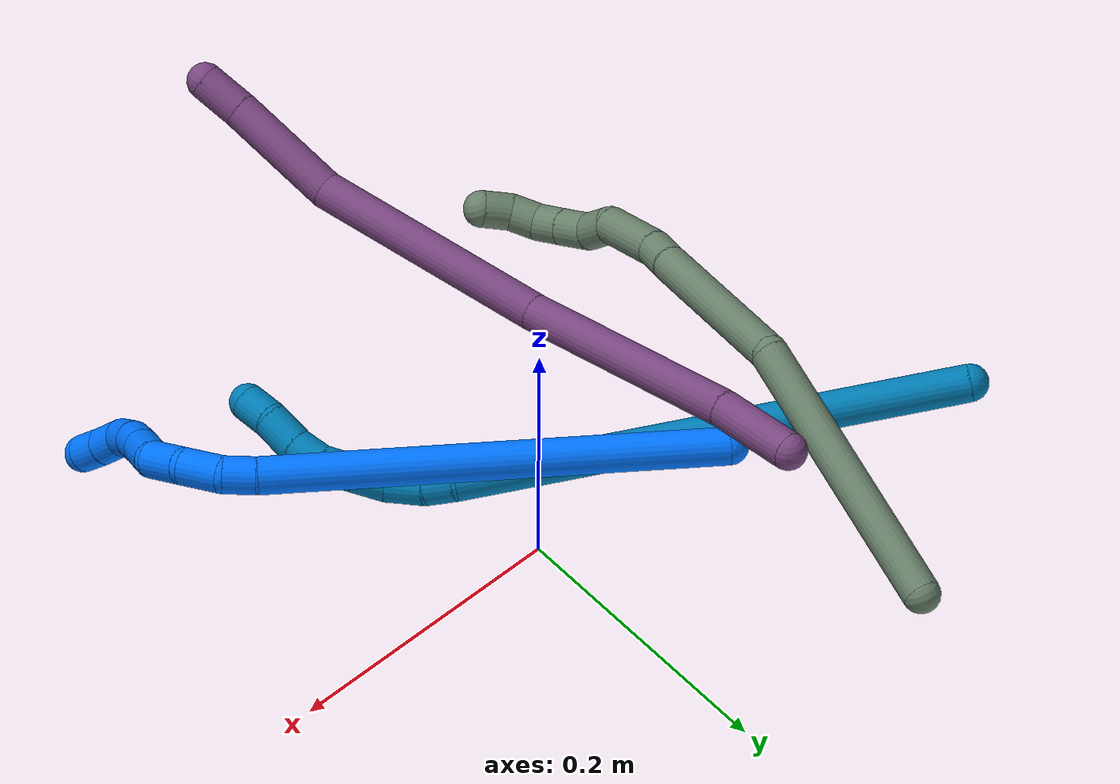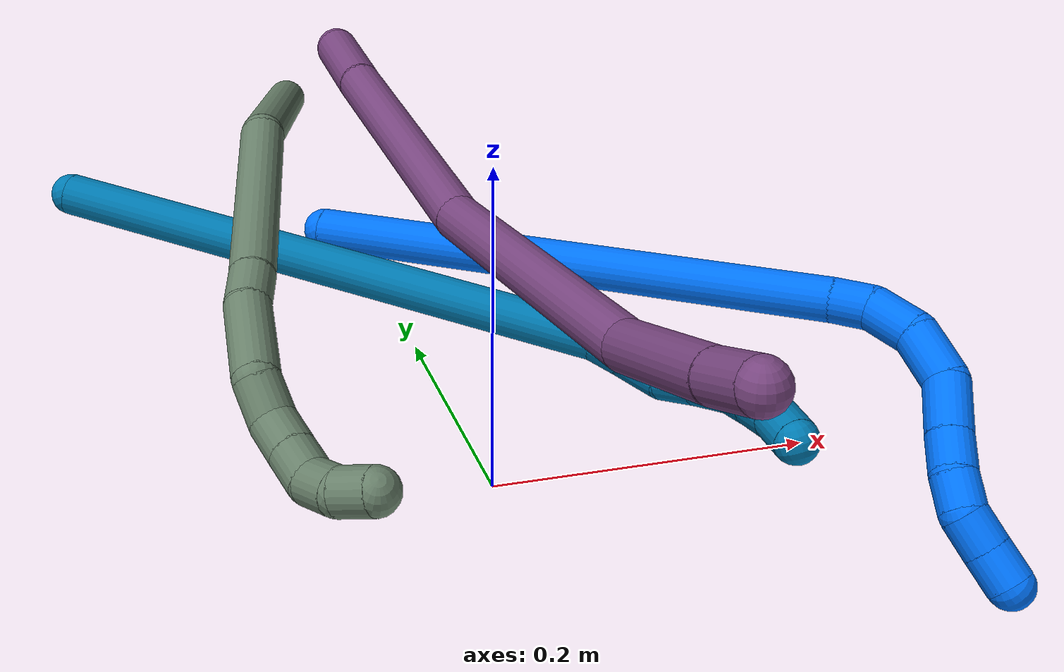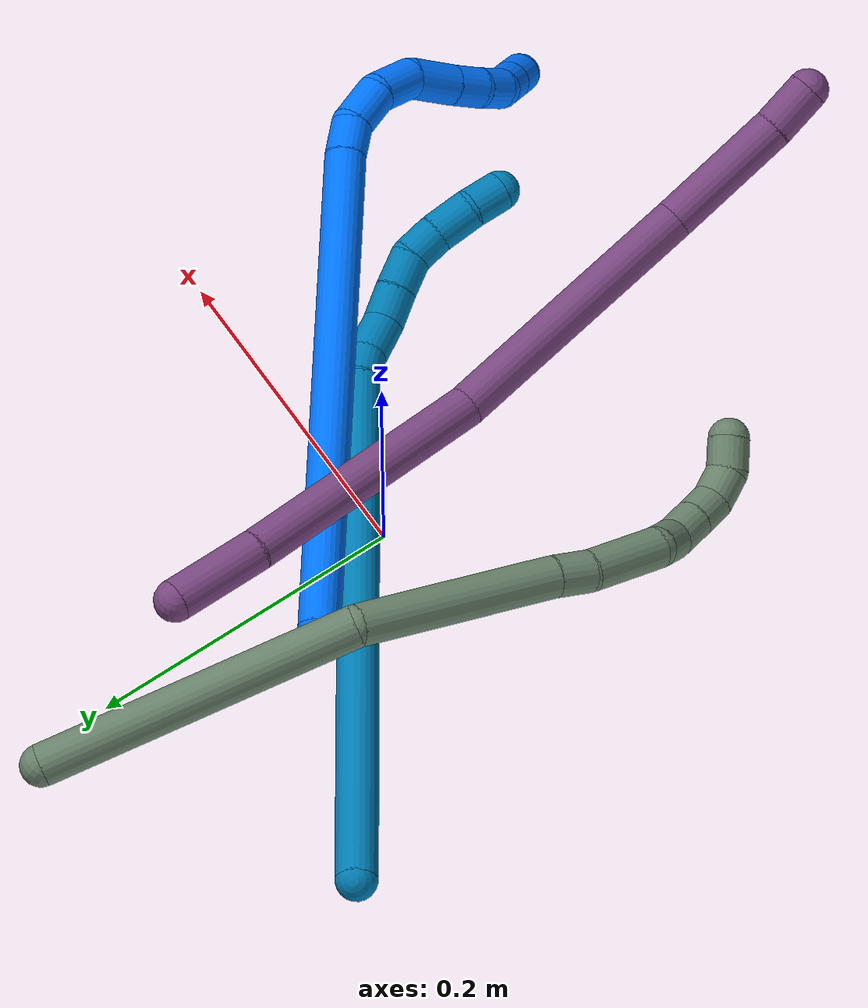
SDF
<sdf version="1.7">
 <world name="default">
  <model name="9">
   <static>0</static>
   <link name="9">
    <collision name="collision-cylinder-e_1_1_4">
     <pose>0.12103 -0.082893 0.085646 0.769063 0.793053 0.335692</pose>
     <geometry><cylinder><radius>0.0125</radius><length>0.339733</length></cylinder></geometry>
     <surface>
      <friction><ode><mu>1.16</mu><mu2>1.16</mu2><slip1>0</slip1><slip2>0</slip2></ode></friction>
      <contact><ode><kp>1e+06</kp><kd>1</kd><max_vel>0</max_vel><min_depth>0.001</min_depth></ode></contact>
     </surface>
    </collision>
    <visual name="visual-cylinder-e_1_1_4">
     <pose>0.12103 -0.082893 0.085646 0.769063 0.793053 0.335692</pose>
     <geometry><cylinder><radius>0.0125</radius><length>0.339733</length></cylinder></geometry>
     <material><ambient>0 0.490196 0.709804 1</ambient></material>
    </visual>
    <collision name="collision-cylinder-e_2_4_5">
     <pose>0.249024 -0.168731 0.177921 0.418127 0.765064 0.170316</pose>
     <geometry><cylinder><radius>0.0125</radius><length>0.020111</length></cylinder></geometry>
     <surface>
      <friction><ode><mu>1.16</mu><mu2>1.16</mu2><slip1>0</slip1><slip2>0</slip2></ode></friction>
      <contact><ode><kp>1e+06</kp><kd>1</kd><max_vel>0</max_vel><min_depth>0.001</min_depth></ode></contact>
     </surface>
    </collision>
    <visual name="visual-cylinder-e_2_4_5">
     <pose>0.249024 -0.168731 0.177921 0.418127 0.765064 0.170316</pose>
     <geometry><cylinder><radius>0.0125</radius><length>0.020111</length></cylinder></geometry>
     <material><ambient>0 0.490196 0.709804 1</ambient></material>
    </visual>
    <collision name="collision-cylinder-e_3_5_6">
     <pose>0.266653 -0.173179 0.192324 0.190938 0.932085 0.09626</pose>
     <geometry><cylinder><radius>0.0125</radius><length>0.026566</length></cylinder></geometry>
     <surface>
      <friction><ode><mu>1.16</mu><mu2>1.16</mu2><slip1>0</slip1><slip2>0</slip2></ode></friction>
      <contact><ode><kp>1e+06</kp><kd>1</kd><max_vel>0</max_vel><min_depth>0.001</min_depth></ode></contact>
     </surface>
    </collision>
    <visual name="visual-cylinder-e_3_5_6">
     <pose>0.266653 -0.173179 0.192324 0.190938 0.932085 0.09626</pose>
     <geometry><cylinder><radius>0.0125</radius><length>0.026566</length></cylinder></geometry>
     <material><ambient>0 0.490196 0.709804 1</ambient></material>
    </visual>
    <collision name="collision-cylinder-e_4_6_7">
     <pose>0.28789 -0.176521 0.203026 0.561202 1.25479 0.412043</pose>
     <geometry><cylinder><radius>0.0125</radius><length>0.022247</length></cylinder></geometry>
     <surface>
      <friction><ode><mu>1.16</mu><mu2>1.16</mu2><slip1>0</slip1><slip2>0</slip2></ode></friction>
      <contact><ode><kp>1e+06</kp><kd>1</kd><max_vel>0</max_vel><min_depth>0.001</min_depth></ode></contact>
     </surface>
    </collision>
    <visual name="visual-cylinder-e_4_6_7">
     <pose>0.28789 -0.176521 0.203026 0.561202 1.25479 0.412043</pose>
     <geometry><cylinder><radius>0.0125</radius><length>0.022247</length></cylinder></geometry>
     <material><ambient>0 0.490196 0.709804 1</ambient></material>
    </visual>
    <collision name="collision-cylinder-e_5_7_8">
     <pose>0.309236 -0.179721 0.209398 0.37584 1.2396 0.269757</pose>
     <geometry><cylinder><radius>0.0125</radius><length>0.022784</length></cylinder></geometry>
     <surface>
      <friction><ode><mu>1.16</mu><mu2>1.16</mu2><slip1>0</slip1><slip2>0</slip2></ode></friction>
      <contact><ode><kp>1e+06</kp><kd>1</kd><max_vel>0</max_vel><min_depth>0.001</min_depth></ode></contact>
     </surface>
    </collision>
    <visual name="visual-cylinder-e_5_7_8">
     <pose>0.309236 -0.179721 0.209398 0.37584 1.2396 0.269757</pose>
     <geometry><cylinder><radius>0.0125</radius><length>0.022784</length></cylinder></geometry>
     <material><ambient>0 0.490196 0.709804 1</ambient></material>
    </visual>
    <collision name="collision-cylinder-e_6_8_9">
     <pose>0.329583 -0.178299 0.216115 -0.704758 1.1492 -0.467486</pose>
     <geometry><cylinder><radius>0.0125</radius><length>0.020987</length></cylinder></geometry>
     <surface>
      <friction><ode><mu>1.16</mu><mu2>1.16</mu2><slip1>0</slip1><slip2>0</slip2></ode></friction>
      <contact><ode><kp>1e+06</kp><kd>1</kd><max_vel>0</max_vel><min_depth>0.001</min_depth></ode></contact>
     </surface>
    </collision>
    <visual name="visual-cylinder-e_6_8_9">
     <pose>0.329583 -0.178299 0.216115 -0.704758 1.1492 -0.467486</pose>
     <geometry><cylinder><radius>0.0125</radius><length>0.020987</length></cylinder></geometry>
     <material><ambient>0 0.490196 0.709804 1</ambient></material>
    </visual>
    <collision name="collision-cylinder-e_7_9_10">
     <pose>0.350628 -0.170222 0.222031 -1.10759 1.09443 -0.720594</pose>
     <geometry><cylinder><radius>0.0125</radius><length>0.025813</length></cylinder></geometry>
     <surface>
      <friction><ode><mu>1.16</mu><mu2>1.16</mu2><slip1>0</slip1><slip2>0</slip2></ode></friction>
      <contact><ode><kp>1e+06</kp><kd>1</kd><max_vel>0</max_vel><min_depth>0.001</min_depth></ode></contact>
     </surface>
    </collision>
    <visual name="visual-cylinder-e_7_9_10">
     <pose>0.350628 -0.170222 0.222031 -1.10759 1.09443 -0.720594</pose>
     <geometry><cylinder><radius>0.0125</radius><length>0.025813</length></cylinder></geometry>
     <material><ambient>0 0.490196 0.709804 1</ambient></material>
    </visual>
    <collision name="collision-cylinder-e_8_10_2">
     <pose>0.370856 -0.160469 0.22934 -0.762754 0.935799 -0.399868</pose>
     <geometry><cylinder><radius>0.0125</radius><length>0.021758</length></cylinder></geometry>
     <surface>
      <friction><ode><mu>1.16</mu><mu2>1.16</mu2><slip1>0</slip1><slip2>0</slip2></ode></friction>
      <contact><ode><kp>1e+06</kp><kd>1</kd><max_vel>0</max_vel><min_depth>0.001</min_depth></ode></contact>
     </surface>
    </collision>
    <visual name="visual-cylinder-e_8_10_2">
     <pose>0.370856 -0.160469 0.22934 -0.762754 0.935799 -0.399868</pose>
     <geometry><cylinder><radius>0.0125</radius><length>0.021758</length></cylinder></geometry>
     <material><ambient>0 0.490196 0.709804 1</ambient></material>
    </visual>
    <collision name="collision-sphere-2">
     <pose>0.379614 -0.15601 0.234006 0 -0 0</pose>
     <geometry><sphere><radius>0.0125</radius></sphere></geometry>
     <surface>
      <friction><ode><mu>1.16</mu><mu2>1.16</mu2><slip1>0</slip1><slip2>0</slip2></ode></friction>
      <contact><ode><kp>1e+06</kp><kd>1</kd><max_vel>0</max_vel><min_depth>0.001</min_depth></ode></contact>
     </surface>
    </collision>
    <visual name="visual-sphere-2">
     <pose>0.379614 -0.15601 0.234006 0 -0 0</pose>
     <geometry><sphere><radius>0.0125</radius></sphere></geometry>
     <material><ambient>0 0.490196 0.709804 1</ambient></material>
    </visual>
    <collision name="collision-sphere-10">
     <pose>0.362097 -0.164927 0.224675 0 -0 0</pose>
     <geometry><sphere><radius>0.0125</radius></sphere></geometry>
     <surface>
      <friction><ode><mu>1.16</mu><mu2>1.16</mu2><slip1>0</slip1><slip2>0</slip2></ode></friction>
      <contact><ode><kp>1e+06</kp><kd>1</kd><max_vel>0</max_vel><min_depth>0.001</min_depth></ode></contact>
     </surface>
    </collision>
    <visual name="visual-sphere-10">
     <pose>0.362097 -0.164927 0.224675 0 -0 0</pose>
     <geometry><sphere><radius>0.0125</radius></sphere></geometry>
     <material><ambient>0 0.490196 0.709804 1</ambient></material>
    </visual>
    <collision name="collision-sphere-9">
     <pose>0.339158 -0.175517 0.219386 0 -0 0</pose>
     <geometry><sphere><radius>0.0125</radius></sphere></geometry>
     <surface>
      <friction><ode><mu>1.16</mu><mu2>1.16</mu2><slip1>0</slip1><slip2>0</slip2></ode></friction>
      <contact><ode><kp>1e+06</kp><kd>1</kd><max_vel>0</max_vel><min_depth>0.001</min_depth></ode></contact>
     </surface>
    </collision>
    <visual name="visual-sphere-9">
     <pose>0.339158 -0.175517 0.219386 0 -0 0</pose>
     <geometry><sphere><radius>0.0125</radius></sphere></geometry>
     <material><ambient>0 0.490196 0.709804 1</ambient></material>
    </visual>
    <collision name="collision-sphere-4">
     <pose>0.24206 -0.165785 0.171292 0 -0 0</pose>
     <geometry><sphere><radius>0.0125</radius></sphere></geometry>
     <surface>
      <friction><ode><mu>1.16</mu><mu2>1.16</mu2><slip1>0</slip1><slip2>0</slip2></ode></friction>
      <contact><ode><kp>1e+06</kp><kd>1</kd><max_vel>0</max_vel><min_depth>0.001</min_depth></ode></contact>
     </surface>
    </collision>
    <visual name="visual-sphere-4">
     <pose>0.24206 -0.165785 0.171292 0 -0 0</pose>
     <geometry><sphere><radius>0.0125</radius></sphere></geometry>
     <material><ambient>0 0.490196 0.709804 1</ambient></material>
    </visual>
    <collision name="collision-sphere-1">
     <geometry><sphere><radius>0.0125</radius></sphere></geometry>
     <surface>
      <friction><ode><mu>1.16</mu><mu2>1.16</mu2><slip1>0</slip1><slip2>0</slip2></ode></friction>
      <contact><ode><kp>1e+06</kp><kd>1</kd><max_vel>0</max_vel><min_depth>0.001</min_depth></ode></contact>
     </surface>
    </collision>
    <visual name="visual-sphere-1">
     <geometry><sphere><radius>0.0125</radius></sphere></geometry>
     <material><ambient>0 0.490196 0.709804 1</ambient></material>
    </visual>
    <collision name="collision-sphere-8">
     <pose>0.320009 -0.181081 0.212844 0 -0 0</pose>
     <geometry><sphere><radius>0.0125</radius></sphere></geometry>
     <surface>
      <friction><ode><mu>1.16</mu><mu2>1.16</mu2><slip1>0</slip1><slip2>0</slip2></ode></friction>
      <contact><ode><kp>1e+06</kp><kd>1</kd><max_vel>0</max_vel><min_depth>0.001</min_depth></ode></contact>
     </surface>
    </collision>
    <visual name="visual-sphere-8">
     <pose>0.320009 -0.181081 0.212844 0 -0 0</pose>
     <geometry><sphere><radius>0.0125</radius></sphere></geometry>
     <material><ambient>0 0.490196 0.709804 1</ambient></material>
    </visual>
    <collision name="collision-sphere-5">
     <pose>0.255988 -0.171676 0.184549 0 -0 0</pose>
     <geometry><sphere><radius>0.0125</radius></sphere></geometry>
     <surface>
      <friction><ode><mu>1.16</mu><mu2>1.16</mu2><slip1>0</slip1><slip2>0</slip2></ode></friction>
      <contact><ode><kp>1e+06</kp><kd>1</kd><max_vel>0</max_vel><min_depth>0.001</min_depth></ode></contact>
     </surface>
    </collision>
    <visual name="visual-sphere-5">
     <pose>0.255988 -0.171676 0.184549 0 -0 0</pose>
     <geometry><sphere><radius>0.0125</radius></sphere></geometry>
     <material><ambient>0 0.490196 0.709804 1</ambient></material>
    </visual>
    <collision name="collision-sphere-6">
     <pose>0.277317 -0.174682 0.200099 0 -0 0</pose>
     <geometry><sphere><radius>0.0125</radius></sphere></geometry>
     <surface>
      <friction><ode><mu>1.16</mu><mu2>1.16</mu2><slip1>0</slip1><slip2>0</slip2></ode></friction>
      <contact><ode><kp>1e+06</kp><kd>1</kd><max_vel>0</max_vel><min_depth>0.001</min_depth></ode></contact>
     </surface>
    </collision>
    <visual name="visual-sphere-6">
     <pose>0.277317 -0.174682 0.200099 0 -0 0</pose>
     <geometry><sphere><radius>0.0125</radius></sphere></geometry>
     <material><ambient>0 0.490196 0.709804 1</ambient></material>
    </visual>
    <collision name="collision-sphere-7">
     <pose>0.298463 -0.178361 0.205952 0 -0 0</pose>
     <geometry><sphere><radius>0.0125</radius></sphere></geometry>
     <surface>
      <friction><ode><mu>1.16</mu><mu2>1.16</mu2><slip1>0</slip1><slip2>0</slip2></ode></friction>
      <contact><ode><kp>1e+06</kp><kd>1</kd><max_vel>0</max_vel><min_depth>0.001</min_depth></ode></contact>
     </surface>
    </collision>
    <visual name="visual-sphere-7">
     <pose>0.298463 -0.178361 0.205952 0 -0 0</pose>
     <geometry><sphere><radius>0.0125</radius></sphere></geometry>
     <material><ambient>0 0.490196 0.709804 1</ambient></material>
    </visual>
    <inertial>
     <pose>0.181394 -0.111609 0.124658 0 -0 0</pose>
     <mass>0.5</mass>
     <inertia>
      <ixx>0.002967</ixx>
      <ixy>0</ixy>
      <ixz>0</ixz>
      <iyy>0.00352</iyy>
      <iyz>0</iyz>
      <izz>-0.000731</izz>
     </inertia>
    </inertial>
   </link>
   <pose>-0.223017 0.168894 0.147479 -3.10312 -0.430996 -1.13542</pose>
  </model>
  <model name="14">
   <static>0</static>
   <link name="14">
    <collision name="collision-cylinder-e_1_1_4">
     <pose>0.043382 -0.120863 0.082604 0.971262 0.288091 0.152814</pose>
     <geometry><cylinder><radius>0.0125</radius><length>0.305375</length></cylinder></geometry>
     <surface>
      <friction><ode><mu>1.16</mu><mu2>1.16</mu2><slip1>0</slip1><slip2>0</slip2></ode></friction>
      <contact><ode><kp>1e+06</kp><kd>1</kd><max_vel>0</max_vel><min_depth>0.001</min_depth></ode></contact>
     </surface>
    </collision>
    <visual name="visual-cylinder-e_1_1_4">
     <pose>0.043382 -0.120863 0.082604 0.971262 0.288091 0.152814</pose>
     <geometry><cylinder><radius>0.0125</radius><length>0.305375</length></cylinder></geometry>
     <material><ambient>0 0.462745 1 1</ambient></material>
    </visual>
    <collision name="collision-cylinder-e_2_4_5">
     <pose>0.091213 -0.250198 0.170714 0.994519 0.414831 0.227449</pose>
     <geometry><cylinder><radius>0.0125</radius><length>0.022079</length></cylinder></geometry>
     <surface>
      <friction><ode><mu>1.16</mu><mu2>1.16</mu2><slip1>0</slip1><slip2>0</slip2></ode></friction>
      <contact><ode><kp>1e+06</kp><kd>1</kd><max_vel>0</max_vel><min_depth>0.001</min_depth></ode></contact>
     </surface>
    </collision>
    <visual name="visual-cylinder-e_2_4_5">
     <pose>0.091213 -0.250198 0.170714 0.994519 0.414831 0.227449</pose>
     <geometry><cylinder><radius>0.0125</radius><length>0.022079</length></cylinder></geometry>
     <material><ambient>0 0.462745 1 1</ambient></material>
    </visual>
    <collision name="collision-cylinder-e_3_5_6">
     <pose>0.106008 -0.266082 0.182677 0.854103 0.810909 0.385798</pose>
     <geometry><cylinder><radius>0.0125</radius><length>0.028545</length></cylinder></geometry>
     <surface>
      <friction><ode><mu>1.16</mu><mu2>1.16</mu2><slip1>0</slip1><slip2>0</slip2></ode></friction>
      <contact><ode><kp>1e+06</kp><kd>1</kd><max_vel>0</max_vel><min_depth>0.001</min_depth></ode></contact>
     </surface>
    </collision>
    <visual name="visual-cylinder-e_3_5_6">
     <pose>0.106008 -0.266082 0.182677 0.854103 0.810909 0.385798</pose>
     <geometry><cylinder><radius>0.0125</radius><length>0.028545</length></cylinder></geometry>
     <material><ambient>0 0.462745 1 1</ambient></material>
    </visual>
    <collision name="collision-cylinder-e_4_6_7">
     <pose>0.129744 -0.275675 0.196862 0.274972 1.03068 0.156411</pose>
     <geometry><cylinder><radius>0.0125</radius><length>0.031224</length></cylinder></geometry>
     <surface>
      <friction><ode><mu>1.16</mu><mu2>1.16</mu2><slip1>0</slip1><slip2>0</slip2></ode></friction>
      <contact><ode><kp>1e+06</kp><kd>1</kd><max_vel>0</max_vel><min_depth>0.001</min_depth></ode></contact>
     </surface>
    </collision>
    <visual name="visual-cylinder-e_4_6_7">
     <pose>0.129744 -0.275675 0.196862 0.274972 1.03068 0.156411</pose>
     <geometry><cylinder><radius>0.0125</radius><length>0.031224</length></cylinder></geometry>
     <material><ambient>0 0.462745 1 1</ambient></material>
    </visual>
    <collision name="collision-cylinder-e_5_7_8">
     <pose>0.157581 -0.273588 0.208849 -0.786103 1.17546 -0.539065</pose>
     <geometry><cylinder><radius>0.0125</radius><length>0.03131</length></cylinder></geometry>
     <surface>
      <friction><ode><mu>1.16</mu><mu2>1.16</mu2><slip1>0</slip1><slip2>0</slip2></ode></friction>
      <contact><ode><kp>1e+06</kp><kd>1</kd><max_vel>0</max_vel><min_depth>0.001</min_depth></ode></contact>
     </surface>
    </collision>
    <visual name="visual-cylinder-e_5_7_8">
     <pose>0.157581 -0.273588 0.208849 -0.786103 1.17546 -0.539065</pose>
     <geometry><cylinder><radius>0.0125</radius><length>0.03131</length></cylinder></geometry>
     <material><ambient>0 0.462745 1 1</ambient></material>
    </visual>
    <collision name="collision-cylinder-e_6_8_9">
     <pose>0.181894 -0.266898 0.216205 -0.664261 1.19146 -0.459365</pose>
     <geometry><cylinder><radius>0.0125</radius><length>0.02124</length></cylinder></geometry>
     <surface>
      <friction><ode><mu>1.16</mu><mu2>1.16</mu2><slip1>0</slip1><slip2>0</slip2></ode></friction>
      <contact><ode><kp>1e+06</kp><kd>1</kd><max_vel>0</max_vel><min_depth>0.001</min_depth></ode></contact>
     </surface>
    </collision>
    <visual name="visual-cylinder-e_6_8_9">
     <pose>0.181894 -0.266898 0.216205 -0.664261 1.19146 -0.459365</pose>
     <geometry><cylinder><radius>0.0125</radius><length>0.02124</length></cylinder></geometry>
     <material><ambient>0 0.462745 1 1</ambient></material>
    </visual>
    <collision name="collision-cylinder-e_7_9_10">
     <pose>0.200321 -0.262743 0.224174 -0.34125 1.02759 -0.193866</pose>
     <geometry><cylinder><radius>0.0125</radius><length>0.020005</length></cylinder></geometry>
     <surface>
      <friction><ode><mu>1.16</mu><mu2>1.16</mu2><slip1>0</slip1><slip2>0</slip2></ode></friction>
      <contact><ode><kp>1e+06</kp><kd>1</kd><max_vel>0</max_vel><min_depth>0.001</min_depth></ode></contact>
     </surface>
    </collision>
    <visual name="visual-cylinder-e_7_9_10">
     <pose>0.200321 -0.262743 0.224174 -0.34125 1.02759 -0.193866</pose>
     <geometry><cylinder><radius>0.0125</radius><length>0.020005</length></cylinder></geometry>
     <material><ambient>0 0.462745 1 1</ambient></material>
    </visual>
    <collision name="collision-cylinder-e_8_10_11">
     <pose>0.214752 -0.261483 0.237192 0.05763 0.623418 0.018574</pose>
     <geometry><cylinder><radius>0.0125</radius><length>0.020101</length></cylinder></geometry>
     <surface>
      <friction><ode><mu>1.16</mu><mu2>1.16</mu2><slip1>0</slip1><slip2>0</slip2></ode></friction>
      <contact><ode><kp>1e+06</kp><kd>1</kd><max_vel>0</max_vel><min_depth>0.001</min_depth></ode></contact>
     </surface>
    </collision>
    <visual name="visual-cylinder-e_8_10_11">
     <pose>0.214752 -0.261483 0.237192 0.05763 0.623418 0.018574</pose>
     <geometry><cylinder><radius>0.0125</radius><length>0.020101</length></cylinder></geometry>
     <material><ambient>0 0.462745 1 1</ambient></material>
    </visual>
    <collision name="collision-cylinder-e_9_11_2">
     <pose>0.226837 -0.262741 0.253209 0.099826 0.666242 0.034567</pose>
     <geometry><cylinder><radius>0.0125</radius><length>0.020122</length></cylinder></geometry>
     <surface>
      <friction><ode><mu>1.16</mu><mu2>1.16</mu2><slip1>0</slip1><slip2>0</slip2></ode></friction>
      <contact><ode><kp>1e+06</kp><kd>1</kd><max_vel>0</max_vel><min_depth>0.001</min_depth></ode></contact>
     </surface>
    </collision>
    <visual name="visual-cylinder-e_9_11_2">
     <pose>0.226837 -0.262741 0.253209 0.099826 0.666242 0.034567</pose>
     <geometry><cylinder><radius>0.0125</radius><length>0.020122</length></cylinder></geometry>
     <material><ambient>0 0.462745 1 1</ambient></material>
    </visual>
    <collision name="collision-sphere-2">
     <pose>0.233056 -0.263529 0.261079 0 -0 0</pose>
     <geometry><sphere><radius>0.0125</radius></sphere></geometry>
     <surface>
      <friction><ode><mu>1.16</mu><mu2>1.16</mu2><slip1>0</slip1><slip2>0</slip2></ode></friction>
      <contact><ode><kp>1e+06</kp><kd>1</kd><max_vel>0</max_vel><min_depth>0.001</min_depth></ode></contact>
     </surface>
    </collision>
    <visual name="visual-sphere-2">
     <pose>0.233056 -0.263529 0.261079 0 -0 0</pose>
     <geometry><sphere><radius>0.0125</radius></sphere></geometry>
     <material><ambient>0 0.462745 1 1</ambient></material>
    </visual>
    <collision name="collision-sphere-11">
     <pose>0.220619 -0.261953 0.245339 0 -0 0</pose>
     <geometry><sphere><radius>0.0125</radius></sphere></geometry>
     <surface>
      <friction><ode><mu>1.16</mu><mu2>1.16</mu2><slip1>0</slip1><slip2>0</slip2></ode></friction>
      <contact><ode><kp>1e+06</kp><kd>1</kd><max_vel>0</max_vel><min_depth>0.001</min_depth></ode></contact>
     </surface>
    </collision>
    <visual name="visual-sphere-11">
     <pose>0.220619 -0.261953 0.245339 0 -0 0</pose>
     <geometry><sphere><radius>0.0125</radius></sphere></geometry>
     <material><ambient>0 0.462745 1 1</ambient></material>
    </visual>
    <collision name="collision-sphere-10">
     <pose>0.208884 -0.261013 0.229046 0 -0 0</pose>
     <geometry><sphere><radius>0.0125</radius></sphere></geometry>
     <surface>
      <friction><ode><mu>1.16</mu><mu2>1.16</mu2><slip1>0</slip1><slip2>0</slip2></ode></friction>
      <contact><ode><kp>1e+06</kp><kd>1</kd><max_vel>0</max_vel><min_depth>0.001</min_depth></ode></contact>
     </surface>
    </collision>
    <visual name="visual-sphere-10">
     <pose>0.208884 -0.261013 0.229046 0 -0 0</pose>
     <geometry><sphere><radius>0.0125</radius></sphere></geometry>
     <material><ambient>0 0.462745 1 1</ambient></material>
    </visual>
    <collision name="collision-sphere-9">
     <pose>0.191759 -0.264473 0.219302 0 -0 0</pose>
     <geometry><sphere><radius>0.0125</radius></sphere></geometry>
     <surface>
      <friction><ode><mu>1.16</mu><mu2>1.16</mu2><slip1>0</slip1><slip2>0</slip2></ode></friction>
      <contact><ode><kp>1e+06</kp><kd>1</kd><max_vel>0</max_vel><min_depth>0.001</min_depth></ode></contact>
     </surface>
    </collision>
    <visual name="visual-sphere-9">
     <pose>0.191759 -0.264473 0.219302 0 -0 0</pose>
     <geometry><sphere><radius>0.0125</radius></sphere></geometry>
     <material><ambient>0 0.462745 1 1</ambient></material>
    </visual>
    <collision name="collision-sphere-4">
     <pose>0.086764 -0.241727 0.165209 0 -0 0</pose>
     <geometry><sphere><radius>0.0125</radius></sphere></geometry>
     <surface>
      <friction><ode><mu>1.16</mu><mu2>1.16</mu2><slip1>0</slip1><slip2>0</slip2></ode></friction>
      <contact><ode><kp>1e+06</kp><kd>1</kd><max_vel>0</max_vel><min_depth>0.001</min_depth></ode></contact>
     </surface>
    </collision>
    <visual name="visual-sphere-4">
     <pose>0.086764 -0.241727 0.165209 0 -0 0</pose>
     <geometry><sphere><radius>0.0125</radius></sphere></geometry>
     <material><ambient>0 0.462745 1 1</ambient></material>
    </visual>
    <collision name="collision-sphere-1">
     <geometry><sphere><radius>0.0125</radius></sphere></geometry>
     <surface>
      <friction><ode><mu>1.16</mu><mu2>1.16</mu2><slip1>0</slip1><slip2>0</slip2></ode></friction>
      <contact><ode><kp>1e+06</kp><kd>1</kd><max_vel>0</max_vel><min_depth>0.001</min_depth></ode></contact>
     </surface>
    </collision>
    <visual name="visual-sphere-1">
     <geometry><sphere><radius>0.0125</radius></sphere></geometry>
     <material><ambient>0 0.462745 1 1</ambient></material>
    </visual>
    <collision name="collision-sphere-8">
     <pose>0.172029 -0.269322 0.213109 0 -0 0</pose>
     <geometry><sphere><radius>0.0125</radius></sphere></geometry>
     <surface>
      <friction><ode><mu>1.16</mu><mu2>1.16</mu2><slip1>0</slip1><slip2>0</slip2></ode></friction>
      <contact><ode><kp>1e+06</kp><kd>1</kd><max_vel>0</max_vel><min_depth>0.001</min_depth></ode></contact>
     </surface>
    </collision>
    <visual name="visual-sphere-8">
     <pose>0.172029 -0.269322 0.213109 0 -0 0</pose>
     <geometry><sphere><radius>0.0125</radius></sphere></geometry>
     <material><ambient>0 0.462745 1 1</ambient></material>
    </visual>
    <collision name="collision-sphere-5">
     <pose>0.095662 -0.258669 0.176219 0 -0 0</pose>
     <geometry><sphere><radius>0.0125</radius></sphere></geometry>
     <surface>
      <friction><ode><mu>1.16</mu><mu2>1.16</mu2><slip1>0</slip1><slip2>0</slip2></ode></friction>
      <contact><ode><kp>1e+06</kp><kd>1</kd><max_vel>0</max_vel><min_depth>0.001</min_depth></ode></contact>
     </surface>
    </collision>
    <visual name="visual-sphere-5">
     <pose>0.095662 -0.258669 0.176219 0 -0 0</pose>
     <geometry><sphere><radius>0.0125</radius></sphere></geometry>
     <material><ambient>0 0.462745 1 1</ambient></material>
    </visual>
    <collision name="collision-sphere-6">
     <pose>0.116355 -0.273495 0.189135 0 -0 0</pose>
     <geometry><sphere><radius>0.0125</radius></sphere></geometry>
     <surface>
      <friction><ode><mu>1.16</mu><mu2>1.16</mu2><slip1>0</slip1><slip2>0</slip2></ode></friction>
      <contact><ode><kp>1e+06</kp><kd>1</kd><max_vel>0</max_vel><min_depth>0.001</min_depth></ode></contact>
     </surface>
    </collision>
    <visual name="visual-sphere-6">
     <pose>0.116355 -0.273495 0.189135 0 -0 0</pose>
     <geometry><sphere><radius>0.0125</radius></sphere></geometry>
     <material><ambient>0 0.462745 1 1</ambient></material>
    </visual>
    <collision name="collision-sphere-7">
     <pose>0.143134 -0.277854 0.204589 0 -0 0</pose>
     <geometry><sphere><radius>0.0125</radius></sphere></geometry>
     <surface>
      <friction><ode><mu>1.16</mu><mu2>1.16</mu2><slip1>0</slip1><slip2>0</slip2></ode></friction>
      <contact><ode><kp>1e+06</kp><kd>1</kd><max_vel>0</max_vel><min_depth>0.001</min_depth></ode></contact>
     </surface>
    </collision>
    <visual name="visual-sphere-7">
     <pose>0.143134 -0.277854 0.204589 0 -0 0</pose>
     <geometry><sphere><radius>0.0125</radius></sphere></geometry>
     <material><ambient>0 0.462745 1 1</ambient></material>
    </visual>
    <inertial>
     <pose>0.088049 -0.177339 0.131669 0 -0 0</pose>
     <mass>0.5</mass>
     <inertia>
      <ixx>0.002637</ixx>
      <ixy>0</ixy>
      <ixz>0</ixz>
      <iyy>0.00176</iyy>
      <iyz>0</iyz>
      <izz>0.001219</izz>
     </inertia>
    </inertial>
   </link>
   <pose>-0.07808 0.097008 0.135917 -2.46734 0.223435 -1.91653</pose>
  </model>
  <model name="17">
   <static>0</static>
   <link name="17">
    <collision name="collision-cylinder-e_1_1_4">
     <pose>-0.038228 -0.057556 0.068566 0.698323 -0.403587 -0.14869</pose>
     <geometry><cylinder><radius>0.0125</radius><length>0.194684</length></cylinder></geometry>
     <surface>
      <friction><ode><mu>1.16</mu><mu2>1.16</mu2><slip1>0</slip1><slip2>0</slip2></ode></friction>
      <contact><ode><kp>1e+06</kp><kd>1</kd><max_vel>0</max_vel><min_depth>0.001</min_depth></ode></contact>
     </surface>
    </collision>
    <visual name="visual-cylinder-e_1_1_4">
     <pose>-0.038228 -0.057556 0.068566 0.698323 -0.403587 -0.14869</pose>
     <geometry><cylinder><radius>0.0125</radius><length>0.194684</length></cylinder></geometry>
     <material><ambient>0.415686 0.509804 0.423529 1</ambient></material>
    </visual>
    <collision name="collision-cylinder-e_2_4_5">
     <pose>-0.10467 -0.168768 0.15672 1.22078 -0.458802 -0.323822</pose>
     <geometry><cylinder><radius>0.0125</radius><length>0.127414</length></cylinder></geometry>
     <surface>
      <friction><ode><mu>1.16</mu><mu2>1.16</mu2><slip1>0</slip1><slip2>0</slip2></ode></friction>
      <contact><ode><kp>1e+06</kp><kd>1</kd><max_vel>0</max_vel><min_depth>0.001</min_depth></ode></contact>
     </surface>
    </collision>
    <visual name="visual-cylinder-e_2_4_5">
     <pose>-0.10467 -0.168768 0.15672 1.22078 -0.458802 -0.323822</pose>
     <geometry><cylinder><radius>0.0125</radius><length>0.127414</length></cylinder></geometry>
     <material><ambient>0.415686 0.509804 0.423529 1</ambient></material>
    </visual>
    <collision name="collision-cylinder-e_3_5_6">
     <pose>-0.138695 -0.23202 0.179252 1.27297 -0.524666 -0.391834</pose>
     <geometry><cylinder><radius>0.0125</radius><length>0.023197</length></cylinder></geometry>
     <surface>
      <friction><ode><mu>1.16</mu><mu2>1.16</mu2><slip1>0</slip1><slip2>0</slip2></ode></friction>
      <contact><ode><kp>1e+06</kp><kd>1</kd><max_vel>0</max_vel><min_depth>0.001</min_depth></ode></contact>
     </surface>
    </collision>
    <visual name="visual-cylinder-e_3_5_6">
     <pose>-0.138695 -0.23202 0.179252 1.27297 -0.524666 -0.391834</pose>
     <geometry><cylinder><radius>0.0125</radius><length>0.023197</length></cylinder></geometry>
     <material><ambient>0.415686 0.509804 0.423529 1</ambient></material>
    </visual>
    <collision name="collision-cylinder-e_4_6_7">
     <pose>-0.152716 -0.264553 0.187862 1.3287 -0.334479 -0.262875</pose>
     <geometry><cylinder><radius>0.0125</radius><length>0.050023</length></cylinder></geometry>
     <surface>
      <friction><ode><mu>1.16</mu><mu2>1.16</mu2><slip1>0</slip1><slip2>0</slip2></ode></friction>
      <contact><ode><kp>1e+06</kp><kd>1</kd><max_vel>0</max_vel><min_depth>0.001</min_depth></ode></contact>
     </surface>
    </collision>
    <visual name="visual-cylinder-e_4_6_7">
     <pose>-0.152716 -0.264553 0.187862 1.3287 -0.334479 -0.262875</pose>
     <geometry><cylinder><radius>0.0125</radius><length>0.050023</length></cylinder></geometry>
     <material><ambient>0.415686 0.509804 0.423529 1</ambient></material>
    </visual>
    <collision name="collision-cylinder-e_5_7_8">
     <pose>-0.161558 -0.298748 0.191274 1.76824 -0.054944 -0.067016</pose>
     <geometry><cylinder><radius>0.0125</radius><length>0.022996</length></cylinder></geometry>
     <surface>
      <friction><ode><mu>1.16</mu><mu2>1.16</mu2><slip1>0</slip1><slip2>0</slip2></ode></friction>
      <contact><ode><kp>1e+06</kp><kd>1</kd><max_vel>0</max_vel><min_depth>0.001</min_depth></ode></contact>
     </surface>
    </collision>
    <visual name="visual-cylinder-e_5_7_8">
     <pose>-0.161558 -0.298748 0.191274 1.76824 -0.054944 -0.067016</pose>
     <geometry><cylinder><radius>0.0125</radius><length>0.022996</length></cylinder></geometry>
     <material><ambient>0.415686 0.509804 0.423529 1</ambient></material>
    </visual>
    <collision name="collision-cylinder-e_6_8_9">
     <pose>-0.162054 -0.32046 0.191562 1.33249 0.012559 0.009873</pose>
     <geometry><cylinder><radius>0.0125</radius><length>0.021518</length></cylinder></geometry>
     <surface>
      <friction><ode><mu>1.16</mu><mu2>1.16</mu2><slip1>0</slip1><slip2>0</slip2></ode></friction>
      <contact><ode><kp>1e+06</kp><kd>1</kd><max_vel>0</max_vel><min_depth>0.001</min_depth></ode></contact>
     </surface>
    </collision>
    <visual name="visual-cylinder-e_6_8_9">
     <pose>-0.162054 -0.32046 0.191562 1.33249 0.012559 0.009873</pose>
     <geometry><cylinder><radius>0.0125</radius><length>0.021518</length></cylinder></geometry>
     <material><ambient>0.415686 0.509804 0.423529 1</ambient></material>
    </visual>
    <collision name="collision-cylinder-e_7_9_10">
     <pose>-0.161749 -0.340644 0.196714 1.30844 0.016844 0.012917</pose>
     <geometry><cylinder><radius>0.0125</radius><length>0.020152</length></cylinder></geometry>
     <surface>
      <friction><ode><mu>1.16</mu><mu2>1.16</mu2><slip1>0</slip1><slip2>0</slip2></ode></friction>
      <contact><ode><kp>1e+06</kp><kd>1</kd><max_vel>0</max_vel><min_depth>0.001</min_depth></ode></contact>
     </surface>
    </collision>
    <visual name="visual-cylinder-e_7_9_10">
     <pose>-0.161749 -0.340644 0.196714 1.30844 0.016844 0.012917</pose>
     <geometry><cylinder><radius>0.0125</radius><length>0.020152</length></cylinder></geometry>
     <material><ambient>0.415686 0.509804 0.423529 1</ambient></material>
    </visual>
    <collision name="collision-cylinder-e_8_10_11">
     <pose>-0.158818 -0.357796 0.205439 0.881881 0.279692 0.132668</pose>
     <geometry><cylinder><radius>0.0125</radius><length>0.020007</length></cylinder></geometry>
     <surface>
      <friction><ode><mu>1.16</mu><mu2>1.16</mu2><slip1>0</slip1><slip2>0</slip2></ode></friction>
      <contact><ode><kp>1e+06</kp><kd>1</kd><max_vel>0</max_vel><min_depth>0.001</min_depth></ode></contact>
     </surface>
    </collision>
    <visual name="visual-cylinder-e_8_10_11">
     <pose>-0.158818 -0.357796 0.205439 0.881881 0.279692 0.132668</pose>
     <geometry><cylinder><radius>0.0125</radius><length>0.020007</length></cylinder></geometry>
     <material><ambient>0.415686 0.509804 0.423529 1</ambient></material>
    </visual>
    <collision name="collision-cylinder-e_9_11_2">
     <pose>-0.149621 -0.370688 0.216912 0.795544 0.698862 0.303846</pose>
     <geometry><cylinder><radius>0.0125</radius><length>0.020007</length></cylinder></geometry>
     <surface>
      <friction><ode><mu>1.16</mu><mu2>1.16</mu2><slip1>0</slip1><slip2>0</slip2></ode></friction>
      <contact><ode><kp>1e+06</kp><kd>1</kd><max_vel>0</max_vel><min_depth>0.001</min_depth></ode></contact>
     </surface>
    </collision>
    <visual name="visual-cylinder-e_9_11_2">
     <pose>-0.149621 -0.370688 0.216912 0.795544 0.698862 0.303846</pose>
     <geometry><cylinder><radius>0.0125</radius><length>0.020007</length></cylinder></geometry>
     <material><ambient>0.415686 0.509804 0.423529 1</ambient></material>
    </visual>
    <collision name="collision-sphere-2">
     <pose>-0.143185 -0.376158 0.222272 0 -0 0</pose>
     <geometry><sphere><radius>0.0125</radius></sphere></geometry>
     <surface>
      <friction><ode><mu>1.16</mu><mu2>1.16</mu2><slip1>0</slip1><slip2>0</slip2></ode></friction>
      <contact><ode><kp>1e+06</kp><kd>1</kd><max_vel>0</max_vel><min_depth>0.001</min_depth></ode></contact>
     </surface>
    </collision>
    <visual name="visual-sphere-2">
     <pose>-0.143185 -0.376158 0.222272 0 -0 0</pose>
     <geometry><sphere><radius>0.0125</radius></sphere></geometry>
     <material><ambient>0.415686 0.509804 0.423529 1</ambient></material>
    </visual>
    <collision name="collision-sphere-11">
     <pose>-0.156056 -0.365218 0.211551 0 -0 0</pose>
     <geometry><sphere><radius>0.0125</radius></sphere></geometry>
     <surface>
      <friction><ode><mu>1.16</mu><mu2>1.16</mu2><slip1>0</slip1><slip2>0</slip2></ode></friction>
      <contact><ode><kp>1e+06</kp><kd>1</kd><max_vel>0</max_vel><min_depth>0.001</min_depth></ode></contact>
     </surface>
    </collision>
    <visual name="visual-sphere-11">
     <pose>-0.156056 -0.365218 0.211551 0 -0 0</pose>
     <geometry><sphere><radius>0.0125</radius></sphere></geometry>
     <material><ambient>0.415686 0.509804 0.423529 1</ambient></material>
    </visual>
    <collision name="collision-sphere-10">
     <pose>-0.16158 -0.350374 0.199327 0 -0 0</pose>
     <geometry><sphere><radius>0.0125</radius></sphere></geometry>
     <surface>
      <friction><ode><mu>1.16</mu><mu2>1.16</mu2><slip1>0</slip1><slip2>0</slip2></ode></friction>
      <contact><ode><kp>1e+06</kp><kd>1</kd><max_vel>0</max_vel><min_depth>0.001</min_depth></ode></contact>
     </surface>
    </collision>
    <visual name="visual-sphere-10">
     <pose>-0.16158 -0.350374 0.199327 0 -0 0</pose>
     <geometry><sphere><radius>0.0125</radius></sphere></geometry>
     <material><ambient>0.415686 0.509804 0.423529 1</ambient></material>
    </visual>
    <collision name="collision-sphere-9">
     <pose>-0.161919 -0.330914 0.194101 0 -0 0</pose>
     <geometry><sphere><radius>0.0125</radius></sphere></geometry>
     <surface>
      <friction><ode><mu>1.16</mu><mu2>1.16</mu2><slip1>0</slip1><slip2>0</slip2></ode></friction>
      <contact><ode><kp>1e+06</kp><kd>1</kd><max_vel>0</max_vel><min_depth>0.001</min_depth></ode></contact>
     </surface>
    </collision>
    <visual name="visual-sphere-9">
     <pose>-0.161919 -0.330914 0.194101 0 -0 0</pose>
     <geometry><sphere><radius>0.0125</radius></sphere></geometry>
     <material><ambient>0.415686 0.509804 0.423529 1</ambient></material>
    </visual>
    <collision name="collision-sphere-4">
     <pose>-0.076456 -0.115113 0.137133 0 -0 0</pose>
     <geometry><sphere><radius>0.0125</radius></sphere></geometry>
     <surface>
      <friction><ode><mu>1.16</mu><mu2>1.16</mu2><slip1>0</slip1><slip2>0</slip2></ode></friction>
      <contact><ode><kp>1e+06</kp><kd>1</kd><max_vel>0</max_vel><min_depth>0.001</min_depth></ode></contact>
     </surface>
    </collision>
    <visual name="visual-sphere-4">
     <pose>-0.076456 -0.115113 0.137133 0 -0 0</pose>
     <geometry><sphere><radius>0.0125</radius></sphere></geometry>
     <material><ambient>0.415686 0.509804 0.423529 1</ambient></material>
    </visual>
    <collision name="collision-sphere-1">
     <geometry><sphere><radius>0.0125</radius></sphere></geometry>
     <surface>
      <friction><ode><mu>1.16</mu><mu2>1.16</mu2><slip1>0</slip1><slip2>0</slip2></ode></friction>
      <contact><ode><kp>1e+06</kp><kd>1</kd><max_vel>0</max_vel><min_depth>0.001</min_depth></ode></contact>
     </surface>
    </collision>
    <visual name="visual-sphere-1">
     <geometry><sphere><radius>0.0125</radius></sphere></geometry>
     <material><ambient>0.415686 0.509804 0.423529 1</ambient></material>
    </visual>
    <collision name="collision-sphere-8">
     <pose>-0.162189 -0.310005 0.189022 0 -0 0</pose>
     <geometry><sphere><radius>0.0125</radius></sphere></geometry>
     <surface>
      <friction><ode><mu>1.16</mu><mu2>1.16</mu2><slip1>0</slip1><slip2>0</slip2></ode></friction>
      <contact><ode><kp>1e+06</kp><kd>1</kd><max_vel>0</max_vel><min_depth>0.001</min_depth></ode></contact>
     </surface>
    </collision>
    <visual name="visual-sphere-8">
     <pose>-0.162189 -0.310005 0.189022 0 -0 0</pose>
     <geometry><sphere><radius>0.0125</radius></sphere></geometry>
     <material><ambient>0.415686 0.509804 0.423529 1</ambient></material>
    </visual>
    <collision name="collision-sphere-5">
     <pose>-0.132885 -0.222424 0.176307 0 -0 0</pose>
     <geometry><sphere><radius>0.0125</radius></sphere></geometry>
     <surface>
      <friction><ode><mu>1.16</mu><mu2>1.16</mu2><slip1>0</slip1><slip2>0</slip2></ode></friction>
      <contact><ode><kp>1e+06</kp><kd>1</kd><max_vel>0</max_vel><min_depth>0.001</min_depth></ode></contact>
     </surface>
    </collision>
    <visual name="visual-sphere-5">
     <pose>-0.132885 -0.222424 0.176307 0 -0 0</pose>
     <geometry><sphere><radius>0.0125</radius></sphere></geometry>
     <material><ambient>0.415686 0.509804 0.423529 1</ambient></material>
    </visual>
    <collision name="collision-sphere-6">
     <pose>-0.144505 -0.241617 0.182198 0 -0 0</pose>
     <geometry><sphere><radius>0.0125</radius></sphere></geometry>
     <surface>
      <friction><ode><mu>1.16</mu><mu2>1.16</mu2><slip1>0</slip1><slip2>0</slip2></ode></friction>
      <contact><ode><kp>1e+06</kp><kd>1</kd><max_vel>0</max_vel><min_depth>0.001</min_depth></ode></contact>
     </surface>
    </collision>
    <visual name="visual-sphere-6">
     <pose>-0.144505 -0.241617 0.182198 0 -0 0</pose>
     <geometry><sphere><radius>0.0125</radius></sphere></geometry>
     <material><ambient>0.415686 0.509804 0.423529 1</ambient></material>
    </visual>
    <collision name="collision-sphere-7">
     <pose>-0.160926 -0.28749 0.193526 0 -0 0</pose>
     <geometry><sphere><radius>0.0125</radius></sphere></geometry>
     <surface>
      <friction><ode><mu>1.16</mu><mu2>1.16</mu2><slip1>0</slip1><slip2>0</slip2></ode></friction>
      <contact><ode><kp>1e+06</kp><kd>1</kd><max_vel>0</max_vel><min_depth>0.001</min_depth></ode></contact>
     </surface>
    </collision>
    <visual name="visual-sphere-7">
     <pose>-0.160926 -0.28749 0.193526 0 -0 0</pose>
     <geometry><sphere><radius>0.0125</radius></sphere></geometry>
     <material><ambient>0.415686 0.509804 0.423529 1</ambient></material>
    </visual>
    <inertial>
     <pose>-0.096537 -0.173061 0.135615 0 -0 0</pose>
     <mass>0.5</mass>
     <inertia>
      <ixx>0.000587</ixx>
      <ixy>0</ixy>
      <ixz>0</ixz>
      <iyy>0.000415</iyy>
      <iyz>0</iyz>
      <izz>0.000881</izz>
     </inertia>
    </inertial>
   </link>
   <pose>-0.071031 0.280825 0.16506 0.601922 -0.166284 0.229282</pose>
  </model>
  <model name="20">
   <static>0</static>
   <link name="20">
    <collision name="collision-cylinder-e_1_1_4">
     <pose>0.000817 -0.02838 -0.001152 1.61136 0.028752 0.029943</pose>
     <geometry><cylinder><radius>0.0125</radius><length>0.056831</length></cylinder></geometry>
     <surface>
      <friction><ode><mu>1.16</mu><mu2>1.16</mu2><slip1>0</slip1><slip2>0</slip2></ode></friction>
      <contact><ode><kp>1e+06</kp><kd>1</kd><max_vel>0</max_vel><min_depth>0.001</min_depth></ode></contact>
     </surface>
    </collision>
    <visual name="visual-cylinder-e_1_1_4">
     <pose>0.000817 -0.02838 -0.001152 1.61136 0.028752 0.029943</pose>
     <geometry><cylinder><radius>0.0125</radius><length>0.056831</length></cylinder></geometry>
     <material><ambient>0.478431 0.278431 0.509804 1</ambient></material>
    </visual>
    <collision name="collision-cylinder-e_2_4_5">
     <pose>0.009085 -0.136665 -0.010896 1.67791 0.092454 0.102911</pose>
     <geometry><cylinder><radius>0.0125</radius><length>0.161419</length></cylinder></geometry>
     <surface>
      <friction><ode><mu>1.16</mu><mu2>1.16</mu2><slip1>0</slip1><slip2>0</slip2></ode></friction>
      <contact><ode><kp>1e+06</kp><kd>1</kd><max_vel>0</max_vel><min_depth>0.001</min_depth></ode></contact>
     </surface>
    </collision>
    <visual name="visual-cylinder-e_2_4_5">
     <pose>0.009085 -0.136665 -0.010896 1.67791 0.092454 0.102911</pose>
     <geometry><cylinder><radius>0.0125</radius><length>0.161419</length></cylinder></geometry>
     <material><ambient>0.478431 0.278431 0.509804 1</ambient></material>
    </visual>
    <collision name="collision-cylinder-e_3_5_6">
     <pose>0.030756 -0.301065 -0.013101 1.49536 0.166263 0.15422</pose>
     <geometry><cylinder><radius>0.0125</radius><length>0.171845</length></cylinder></geometry>
     <surface>
      <friction><ode><mu>1.16</mu><mu2>1.16</mu2><slip1>0</slip1><slip2>0</slip2></ode></friction>
      <contact><ode><kp>1e+06</kp><kd>1</kd><max_vel>0</max_vel><min_depth>0.001</min_depth></ode></contact>
     </surface>
    </collision>
    <visual name="visual-cylinder-e_3_5_6">
     <pose>0.030756 -0.301065 -0.013101 1.49536 0.166263 0.15422</pose>
     <geometry><cylinder><radius>0.0125</radius><length>0.171845</length></cylinder></geometry>
     <material><ambient>0.478431 0.278431 0.509804 1</ambient></material>
    </visual>
    <collision name="collision-cylinder-e_4_6_7">
     <pose>0.048973 -0.42274 0.006789 1.2224 0.100704 0.070595</pose>
     <geometry><cylinder><radius>0.0125</radius><length>0.079512</length></cylinder></geometry>
     <surface>
      <friction><ode><mu>1.16</mu><mu2>1.16</mu2><slip1>0</slip1><slip2>0</slip2></ode></friction>
      <contact><ode><kp>1e+06</kp><kd>1</kd><max_vel>0</max_vel><min_depth>0.001</min_depth></ode></contact>
     </surface>
    </collision>
    <visual name="visual-cylinder-e_4_6_7">
     <pose>0.048973 -0.42274 0.006789 1.2224 0.100704 0.070595</pose>
     <geometry><cylinder><radius>0.0125</radius><length>0.079512</length></cylinder></geometry>
     <material><ambient>0.478431 0.278431 0.509804 1</ambient></material>
    </visual>
    <collision name="collision-cylinder-e_5_7_2">
     <pose>0.055747 -0.473776 0.025877 1.18773 0.183743 0.124248</pose>
     <geometry><cylinder><radius>0.0125</radius><length>0.030394</length></cylinder></geometry>
     <surface>
      <friction><ode><mu>1.16</mu><mu2>1.16</mu2><slip1>0</slip1><slip2>0</slip2></ode></friction>
      <contact><ode><kp>1e+06</kp><kd>1</kd><max_vel>0</max_vel><min_depth>0.001</min_depth></ode></contact>
     </surface>
    </collision>
    <visual name="visual-cylinder-e_5_7_2">
     <pose>0.055747 -0.473776 0.025877 1.18773 0.183743 0.124248</pose>
     <geometry><cylinder><radius>0.0125</radius><length>0.030394</length></cylinder></geometry>
     <material><ambient>0.478431 0.278431 0.509804 1</ambient></material>
    </visual>
    <collision name="collision-sphere-2">
     <pose>0.058523 -0.487635 0.031462 0 -0 0</pose>
     <geometry><sphere><radius>0.0125</radius></sphere></geometry>
     <surface>
      <friction><ode><mu>1.16</mu><mu2>1.16</mu2><slip1>0</slip1><slip2>0</slip2></ode></friction>
      <contact><ode><kp>1e+06</kp><kd>1</kd><max_vel>0</max_vel><min_depth>0.001</min_depth></ode></contact>
     </surface>
    </collision>
    <visual name="visual-sphere-2">
     <pose>0.058523 -0.487635 0.031462 0 -0 0</pose>
     <geometry><sphere><radius>0.0125</radius></sphere></geometry>
     <material><ambient>0.478431 0.278431 0.509804 1</ambient></material>
    </visual>
    <collision name="collision-sphere-7">
     <pose>0.05297 -0.459918 0.020293 0 -0 0</pose>
     <geometry><sphere><radius>0.0125</radius></sphere></geometry>
     <surface>
      <friction><ode><mu>1.16</mu><mu2>1.16</mu2><slip1>0</slip1><slip2>0</slip2></ode></friction>
      <contact><ode><kp>1e+06</kp><kd>1</kd><max_vel>0</max_vel><min_depth>0.001</min_depth></ode></contact>
     </surface>
    </collision>
    <visual name="visual-sphere-7">
     <pose>0.05297 -0.459918 0.020293 0 -0 0</pose>
     <geometry><sphere><radius>0.0125</radius></sphere></geometry>
     <material><ambient>0.478431 0.278431 0.509804 1</ambient></material>
    </visual>
    <collision name="collision-sphere-6">
     <pose>0.044976 -0.385562 -0.006714 0 -0 0</pose>
     <geometry><sphere><radius>0.0125</radius></sphere></geometry>
     <surface>
      <friction><ode><mu>1.16</mu><mu2>1.16</mu2><slip1>0</slip1><slip2>0</slip2></ode></friction>
      <contact><ode><kp>1e+06</kp><kd>1</kd><max_vel>0</max_vel><min_depth>0.001</min_depth></ode></contact>
     </surface>
    </collision>
    <visual name="visual-sphere-6">
     <pose>0.044976 -0.385562 -0.006714 0 -0 0</pose>
     <geometry><sphere><radius>0.0125</radius></sphere></geometry>
     <material><ambient>0.478431 0.278431 0.509804 1</ambient></material>
    </visual>
    <collision name="collision-sphere-5">
     <pose>0.016536 -0.216569 -0.019487 0 -0 0</pose>
     <geometry><sphere><radius>0.0125</radius></sphere></geometry>
     <surface>
      <friction><ode><mu>1.16</mu><mu2>1.16</mu2><slip1>0</slip1><slip2>0</slip2></ode></friction>
      <contact><ode><kp>1e+06</kp><kd>1</kd><max_vel>0</max_vel><min_depth>0.001</min_depth></ode></contact>
     </surface>
    </collision>
    <visual name="visual-sphere-5">
     <pose>0.016536 -0.216569 -0.019487 0 -0 0</pose>
     <geometry><sphere><radius>0.0125</radius></sphere></geometry>
     <material><ambient>0.478431 0.278431 0.509804 1</ambient></material>
    </visual>
    <collision name="collision-sphere-1">
     <geometry><sphere><radius>0.0125</radius></sphere></geometry>
     <surface>
      <friction><ode><mu>1.16</mu><mu2>1.16</mu2><slip1>0</slip1><slip2>0</slip2></ode></friction>
      <contact><ode><kp>1e+06</kp><kd>1</kd><max_vel>0</max_vel><min_depth>0.001</min_depth></ode></contact>
     </surface>
    </collision>
    <visual name="visual-sphere-1">
     <geometry><sphere><radius>0.0125</radius></sphere></geometry>
     <material><ambient>0.478431 0.278431 0.509804 1</ambient></material>
    </visual>
    <collision name="collision-sphere-4">
     <pose>0.001634 -0.056761 -0.002304 0 -0 0</pose>
     <geometry><sphere><radius>0.0125</radius></sphere></geometry>
     <surface>
      <friction><ode><mu>1.16</mu><mu2>1.16</mu2><slip1>0</slip1><slip2>0</slip2></ode></friction>
      <contact><ode><kp>1e+06</kp><kd>1</kd><max_vel>0</max_vel><min_depth>0.001</min_depth></ode></contact>
     </surface>
    </collision>
    <visual name="visual-sphere-4">
     <pose>0.001634 -0.056761 -0.002304 0 -0 0</pose>
     <geometry><sphere><radius>0.0125</radius></sphere></geometry>
     <material><ambient>0.478431 0.278431 0.509804 1</ambient></material>
    </visual>
    <inertial>
     <pose>0.024773 -0.246845 -0.005498 0 -0 0</pose>
     <mass>0.5</mass>
     <inertia>
      <ixx>0.000948</ixx>
      <ixy>0</ixy>
      <ixz>0</ixz>
      <iyy>9.2e-05</iyy>
      <iyz>0</iyz>
      <izz>0.000731</izz>
     </inertia>
    </inertial>
   </link>
   <pose>-0.052591 0.175425 0.226341 0.093014 -0.056543 0.018853</pose>
  </model>
 </world>
</sdf>
